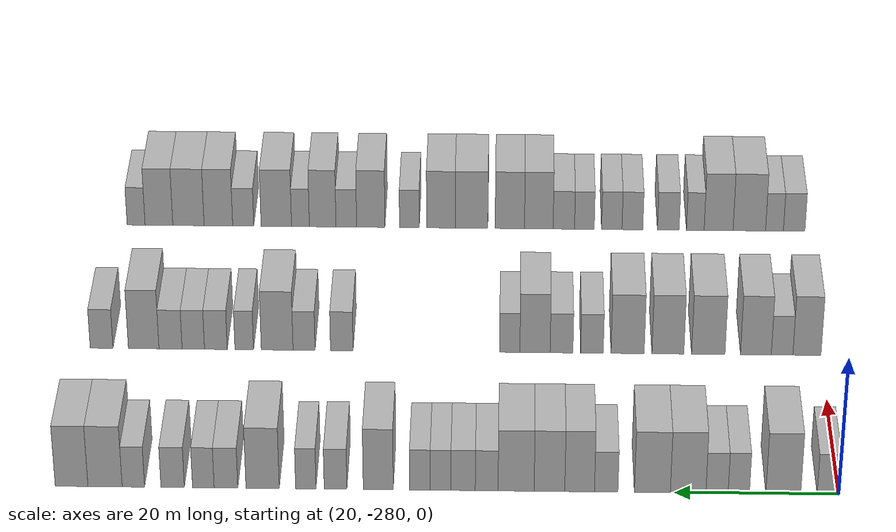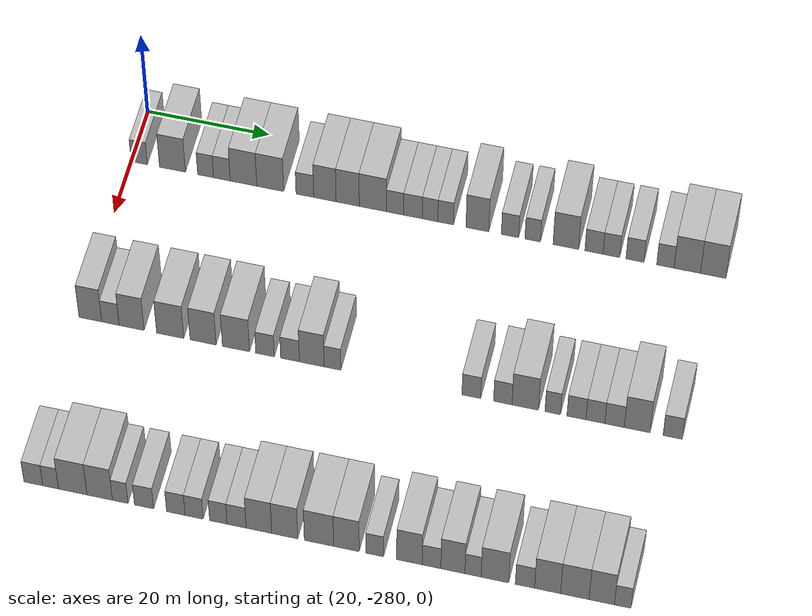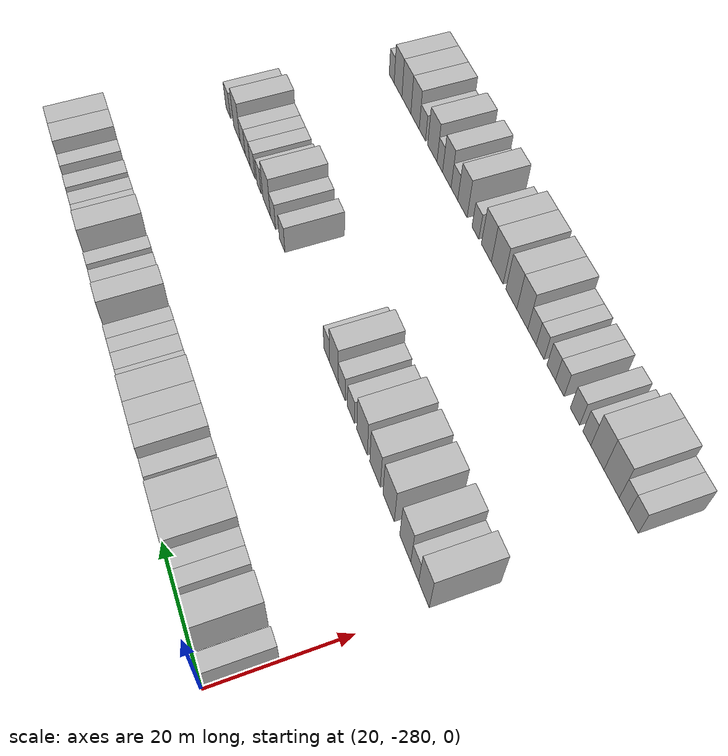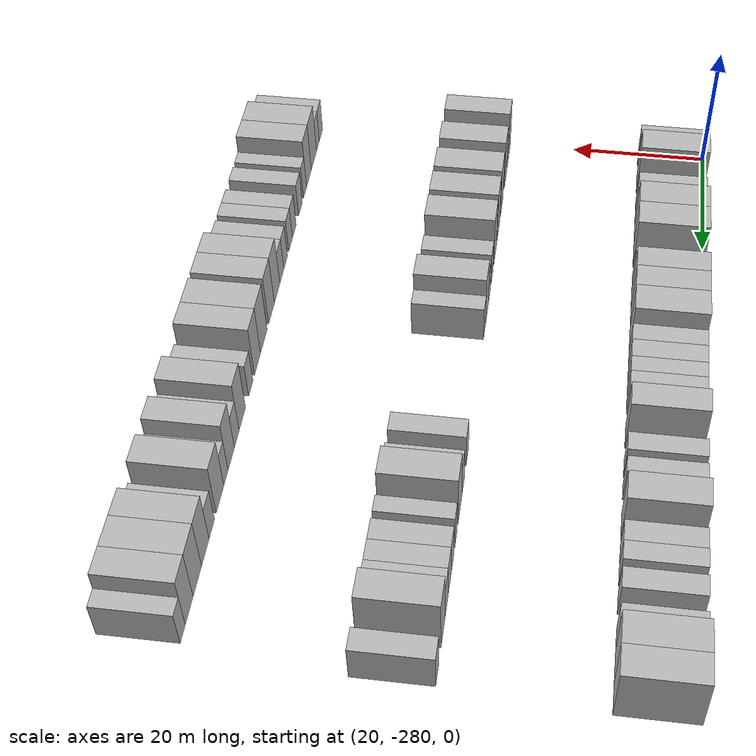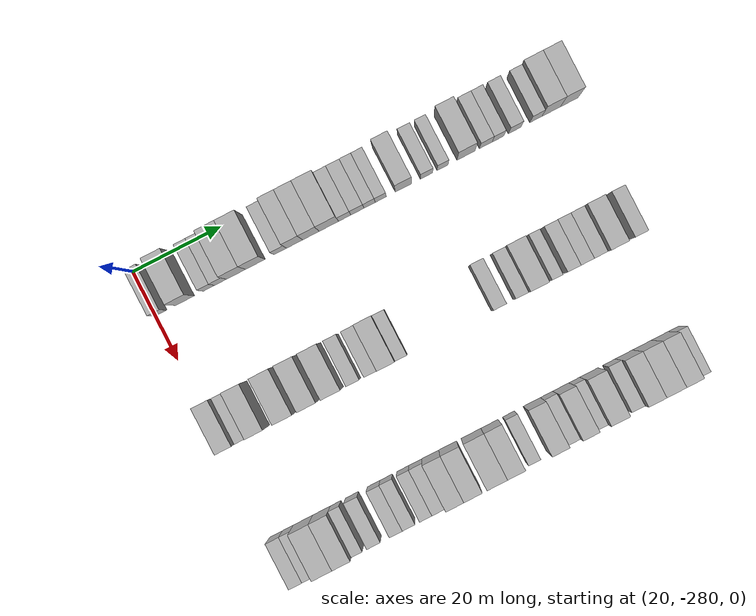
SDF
<sdf version="1.6">
 <world name="default">
  <model name="building_1">
   <static>1</static>
   <pose>25.0000 -278.6816 0 0.000000 0.000000 0.000000</pose>
   <link name="link">
    <pose>0 0 3.00 0 0 0</pose>
    <collision name="collision"><geometry><box><size>10.0000 2.6369 6.0000</size></box></geometry></collision>
    <visual name="visual">
     <cast_shadows>0</cast_shadows>
     <geometry><box><size>10.0000 2.6369 6.0000</size></box></geometry>
     <material>
      <script>
       <uri>model://HANNAS_wall/materials/scripts</uri>
       <uri>model://HANNAS_wall/materials/textures</uri>
       <name>vrc/HANNAS_wall</name>
      </script>
     </material>
    </visual>
   </link>
  </model>
  <model name="building_2">
   <static>1</static>
   <pose>25.0000 -273.2493 0 0.000000 0.000000 0.000000</pose>
   <link name="link">
    <pose>0 0 4.50 0 0 0</pose>
    <collision name="collision"><geometry><box><size>10.0000 4.2277 9.0000</size></box></geometry></collision>
    <visual name="visual">
     <cast_shadows>0</cast_shadows>
     <geometry><box><size>10.0000 4.2277 9.0000</size></box></geometry>
     <material>
      <script>
       <uri>model://HANNAS_wall/materials/scripts</uri>
       <uri>model://HANNAS_wall/materials/textures</uri>
       <name>vrc/HANNAS_wall</name>
      </script>
     </material>
    </visual>
   </link>
  </model>
  <model name="building_3">
   <static>1</static>
   <pose>25.0000 -267.8401 0 0.000000 0.000000 0.000000</pose>
   <link name="link">
    <pose>0 0 3.00 0 0 0</pose>
    <collision name="collision"><geometry><box><size>10.0000 2.5906 6.0000</size></box></geometry></collision>
    <visual name="visual">
     <cast_shadows>0</cast_shadows>
     <geometry><box><size>10.0000 2.5906 6.0000</size></box></geometry>
     <material>
      <script>
       <uri>model://HANNAS_wall/materials/scripts</uri>
       <uri>model://HANNAS_wall/materials/textures</uri>
       <name>vrc/HANNAS_wall</name>
      </script>
     </material>
    </visual>
   </link>
  </model>
  <model name="building_4">
   <static>1</static>
   <pose>25.0000 -265.1921 0 0.000000 0.000000 0.000000</pose>
   <link name="link">
    <pose>0 0 3.00 0 0 0</pose>
    <collision name="collision"><geometry><box><size>10.0000 2.7054 6.0000</size></box></geometry></collision>
    <visual name="visual">
     <cast_shadows>0</cast_shadows>
     <geometry><box><size>10.0000 2.7054 6.0000</size></box></geometry>
     <material>
      <script>
       <uri>model://HANNAS_wall/materials/scripts</uri>
       <uri>model://HANNAS_wall/materials/textures</uri>
       <name>vrc/HANNAS_wall</name>
      </script>
     </material>
    </visual>
   </link>
  </model>
  <model name="building_5">
   <static>1</static>
   <pose>25.0000 -261.6793 0 0.000000 0.000000 0.000000</pose>
   <link name="link">
    <pose>0 0 4.50 0 0 0</pose>
    <collision name="collision"><geometry><box><size>10.0000 4.3202 9.0000</size></box></geometry></collision>
    <visual name="visual">
     <cast_shadows>0</cast_shadows>
     <geometry><box><size>10.0000 4.3202 9.0000</size></box></geometry>
     <material>
      <script>
       <uri>model://HANNAS_wall/materials/scripts</uri>
       <uri>model://HANNAS_wall/materials/textures</uri>
       <name>vrc/HANNAS_wall</name>
      </script>
     </material>
    </visual>
   </link>
  </model>
  <model name="building_6">
   <static>1</static>
   <pose>25.0000 -257.3326 0 0.000000 0.000000 0.000000</pose>
   <link name="link">
    <pose>0 0 4.50 0 0 0</pose>
    <collision name="collision"><geometry><box><size>10.0000 4.3732 9.0000</size></box></geometry></collision>
    <visual name="visual">
     <cast_shadows>0</cast_shadows>
     <geometry><box><size>10.0000 4.3732 9.0000</size></box></geometry>
     <material>
      <script>
       <uri>model://HANNAS_wall/materials/scripts</uri>
       <uri>model://HANNAS_wall/materials/textures</uri>
       <name>vrc/HANNAS_wall</name>
      </script>
     </material>
    </visual>
   </link>
  </model>
  <model name="building_7">
   <static>1</static>
   <pose>25.0000 -251.7151 0 0.000000 0.000000 0.000000</pose>
   <link name="link">
    <pose>0 0 3.00 0 0 0</pose>
    <collision name="collision"><geometry><box><size>10.0000 2.8618 6.0000</size></box></geometry></collision>
    <visual name="visual">
     <cast_shadows>0</cast_shadows>
     <geometry><box><size>10.0000 2.8618 6.0000</size></box></geometry>
     <material>
      <script>
       <uri>model://HANNAS_wall/materials/scripts</uri>
       <uri>model://HANNAS_wall/materials/textures</uri>
       <name>vrc/HANNAS_wall</name>
      </script>
     </material>
    </visual>
   </link>
  </model>
  <model name="building_8">
   <static>1</static>
   <pose>25.0000 -248.4774 0 0.000000 0.000000 0.000000</pose>
   <link name="link">
    <pose>0 0 4.50 0 0 0</pose>
    <collision name="collision"><geometry><box><size>10.0000 3.6135 9.0000</size></box></geometry></collision>
    <visual name="visual">
     <cast_shadows>0</cast_shadows>
     <geometry><box><size>10.0000 3.6135 9.0000</size></box></geometry>
     <material>
      <script>
       <uri>model://HANNAS_wall/materials/scripts</uri>
       <uri>model://HANNAS_wall/materials/textures</uri>
       <name>vrc/HANNAS_wall</name>
      </script>
     </material>
    </visual>
   </link>
  </model>
  <model name="building_9">
   <static>1</static>
   <pose>25.0000 -244.8065 0 0.000000 0.000000 0.000000</pose>
   <link name="link">
    <pose>0 0 4.50 0 0 0</pose>
    <collision name="collision"><geometry><box><size>10.0000 3.7282 9.0000</size></box></geometry></collision>
    <visual name="visual">
     <cast_shadows>0</cast_shadows>
     <geometry><box><size>10.0000 3.7282 9.0000</size></box></geometry>
     <material>
      <script>
       <uri>model://HANNAS_wall/materials/scripts</uri>
       <uri>model://HANNAS_wall/materials/textures</uri>
       <name>vrc/HANNAS_wall</name>
      </script>
     </material>
    </visual>
   </link>
  </model>
  <model name="building_10">
   <static>1</static>
   <pose>25.0000 -240.7461 0 0.000000 0.000000 0.000000</pose>
   <link name="link">
    <pose>0 0 4.50 0 0 0</pose>
    <collision name="collision"><geometry><box><size>10.0000 4.3927 9.0000</size></box></geometry></collision>
    <visual name="visual">
     <cast_shadows>0</cast_shadows>
     <geometry><box><size>10.0000 4.3927 9.0000</size></box></geometry>
     <material>
      <script>
       <uri>model://HANNAS_wall/materials/scripts</uri>
       <uri>model://HANNAS_wall/materials/textures</uri>
       <name>vrc/HANNAS_wall</name>
      </script>
     </material>
    </visual>
   </link>
  </model>
  <model name="building_11">
   <static>1</static>
   <pose>25.0000 -237.1634 0 0.000000 0.000000 0.000000</pose>
   <link name="link">
    <pose>0 0 3.00 0 0 0</pose>
    <collision name="collision"><geometry><box><size>10.0000 2.7726 6.0000</size></box></geometry></collision>
    <visual name="visual">
     <cast_shadows>0</cast_shadows>
     <geometry><box><size>10.0000 2.7726 6.0000</size></box></geometry>
     <material>
      <script>
       <uri>model://HANNAS_wall/materials/scripts</uri>
       <uri>model://HANNAS_wall/materials/textures</uri>
       <name>vrc/HANNAS_wall</name>
      </script>
     </material>
    </visual>
   </link>
  </model>
  <model name="building_12">
   <static>1</static>
   <pose>25.0000 -234.2931 0 0.000000 0.000000 0.000000</pose>
   <link name="link">
    <pose>0 0 3.00 0 0 0</pose>
    <collision name="collision"><geometry><box><size>10.0000 2.9680 6.0000</size></box></geometry></collision>
    <visual name="visual">
     <cast_shadows>0</cast_shadows>
     <geometry><box><size>10.0000 2.9680 6.0000</size></box></geometry>
     <material>
      <script>
       <uri>model://HANNAS_wall/materials/scripts</uri>
       <uri>model://HANNAS_wall/materials/textures</uri>
       <name>vrc/HANNAS_wall</name>
      </script>
     </material>
    </visual>
   </link>
  </model>
  <model name="building_13">
   <static>1</static>
   <pose>25.0000 -231.5516 0 0.000000 0.000000 0.000000</pose>
   <link name="link">
    <pose>0 0 3.00 0 0 0</pose>
    <collision name="collision"><geometry><box><size>10.0000 2.5151 6.0000</size></box></geometry></collision>
    <visual name="visual">
     <cast_shadows>0</cast_shadows>
     <geometry><box><size>10.0000 2.5151 6.0000</size></box></geometry>
     <material>
      <script>
       <uri>model://HANNAS_wall/materials/scripts</uri>
       <uri>model://HANNAS_wall/materials/textures</uri>
       <name>vrc/HANNAS_wall</name>
      </script>
     </material>
    </visual>
   </link>
  </model>
  <model name="building_14">
   <static>1</static>
   <pose>25.0000 -229.0391 0 0.000000 0.000000 0.000000</pose>
   <link name="link">
    <pose>0 0 3.00 0 0 0</pose>
    <collision name="collision"><geometry><box><size>10.0000 2.5098 6.0000</size></box></geometry></collision>
    <visual name="visual">
     <cast_shadows>0</cast_shadows>
     <geometry><box><size>10.0000 2.5098 6.0000</size></box></geometry>
     <material>
      <script>
       <uri>model://HANNAS_wall/materials/scripts</uri>
       <uri>model://HANNAS_wall/materials/textures</uri>
       <name>vrc/HANNAS_wall</name>
      </script>
     </material>
    </visual>
   </link>
  </model>
  <model name="building_15">
   <static>1</static>
   <pose>25.0000 -223.9555 0 0.000000 0.000000 0.000000</pose>
   <link name="link">
    <pose>0 0 4.50 0 0 0</pose>
    <collision name="collision"><geometry><box><size>10.0000 3.6572 9.0000</size></box></geometry></collision>
    <visual name="visual">
     <cast_shadows>0</cast_shadows>
     <geometry><box><size>10.0000 3.6572 9.0000</size></box></geometry>
     <material>
      <script>
       <uri>model://HANNAS_wall/materials/scripts</uri>
       <uri>model://HANNAS_wall/materials/textures</uri>
       <name>vrc/HANNAS_wall</name>
      </script>
     </material>
    </visual>
   </link>
  </model>
  <model name="building_16">
   <static>1</static>
   <pose>25.0000 -218.7445 0 0.000000 0.000000 0.000000</pose>
   <link name="link">
    <pose>0 0 3.00 0 0 0</pose>
    <collision name="collision"><geometry><box><size>10.0000 2.7648 6.0000</size></box></geometry></collision>
    <visual name="visual">
     <cast_shadows>0</cast_shadows>
     <geometry><box><size>10.0000 2.7648 6.0000</size></box></geometry>
     <material>
      <script>
       <uri>model://HANNAS_wall/materials/scripts</uri>
       <uri>model://HANNAS_wall/materials/textures</uri>
       <name>vrc/HANNAS_wall</name>
      </script>
     </material>
    </visual>
   </link>
  </model>
  <model name="building_17">
   <static>1</static>
   <pose>25.0000 -215.1217 0 0.000000 0.000000 0.000000</pose>
   <link name="link">
    <pose>0 0 3.00 0 0 0</pose>
    <collision name="collision"><geometry><box><size>10.0000 2.4809 6.0000</size></box></geometry></collision>
    <visual name="visual">
     <cast_shadows>0</cast_shadows>
     <geometry><box><size>10.0000 2.4809 6.0000</size></box></geometry>
     <material>
      <script>
       <uri>model://HANNAS_wall/materials/scripts</uri>
       <uri>model://HANNAS_wall/materials/textures</uri>
       <name>vrc/HANNAS_wall</name>
      </script>
     </material>
    </visual>
   </link>
  </model>
  <model name="building_18">
   <static>1</static>
   <pose>25.0000 -209.8505 0 0.000000 0.000000 0.000000</pose>
   <link name="link">
    <pose>0 0 4.50 0 0 0</pose>
    <collision name="collision"><geometry><box><size>10.0000 4.0614 9.0000</size></box></geometry></collision>
    <visual name="visual">
     <cast_shadows>0</cast_shadows>
     <geometry><box><size>10.0000 4.0614 9.0000</size></box></geometry>
     <material>
      <script>
       <uri>model://HANNAS_wall/materials/scripts</uri>
       <uri>model://HANNAS_wall/materials/textures</uri>
       <name>vrc/HANNAS_wall</name>
      </script>
     </material>
    </visual>
   </link>
  </model>
  <model name="building_19">
   <static>1</static>
   <pose>25.0000 -205.3740 0 0.000000 0.000000 0.000000</pose>
   <link name="link">
    <pose>0 0 3.00 0 0 0</pose>
    <collision name="collision"><geometry><box><size>10.0000 2.8917 6.0000</size></box></geometry></collision>
    <visual name="visual">
     <cast_shadows>0</cast_shadows>
     <geometry><box><size>10.0000 2.8917 6.0000</size></box></geometry>
     <material>
      <script>
       <uri>model://HANNAS_wall/materials/scripts</uri>
       <uri>model://HANNAS_wall/materials/textures</uri>
       <name>vrc/HANNAS_wall</name>
      </script>
     </material>
    </visual>
   </link>
  </model>
  <model name="building_20">
   <static>1</static>
   <pose>25.0000 -202.6111 0 0.000000 0.000000 0.000000</pose>
   <link name="link">
    <pose>0 0 3.00 0 0 0</pose>
    <collision name="collision"><geometry><box><size>10.0000 2.6340 6.0000</size></box></geometry></collision>
    <visual name="visual">
     <cast_shadows>0</cast_shadows>
     <geometry><box><size>10.0000 2.6340 6.0000</size></box></geometry>
     <material>
      <script>
       <uri>model://HANNAS_wall/materials/scripts</uri>
       <uri>model://HANNAS_wall/materials/textures</uri>
       <name>vrc/HANNAS_wall</name>
      </script>
     </material>
    </visual>
   </link>
  </model>
  <model name="building_21">
   <static>1</static>
   <pose>25.0000 -198.8662 0 0.000000 0.000000 0.000000</pose>
   <link name="link">
    <pose>0 0 3.00 0 0 0</pose>
    <collision name="collision"><geometry><box><size>10.0000 2.8558 6.0000</size></box></geometry></collision>
    <visual name="visual">
     <cast_shadows>0</cast_shadows>
     <geometry><box><size>10.0000 2.8558 6.0000</size></box></geometry>
     <material>
      <script>
       <uri>model://HANNAS_wall/materials/scripts</uri>
       <uri>model://HANNAS_wall/materials/textures</uri>
       <name>vrc/HANNAS_wall</name>
      </script>
     </material>
    </visual>
   </link>
  </model>
  <model name="building_22">
   <static>1</static>
   <pose>25.0000 -194.0693 0 0.000000 0.000000 0.000000</pose>
   <link name="link">
    <pose>0 0 3.00 0 0 0</pose>
    <collision name="collision"><geometry><box><size>10.0000 2.7381 6.0000</size></box></geometry></collision>
    <visual name="visual">
     <cast_shadows>0</cast_shadows>
     <geometry><box><size>10.0000 2.7381 6.0000</size></box></geometry>
     <material>
      <script>
       <uri>model://HANNAS_wall/materials/scripts</uri>
       <uri>model://HANNAS_wall/materials/textures</uri>
       <name>vrc/HANNAS_wall</name>
      </script>
     </material>
    </visual>
   </link>
  </model>
  <model name="building_23">
   <static>1</static>
   <pose>25.0000 -190.6096 0 0.000000 0.000000 0.000000</pose>
   <link name="link">
    <pose>0 0 4.50 0 0 0</pose>
    <collision name="collision"><geometry><box><size>10.0000 4.1812 9.0000</size></box></geometry></collision>
    <visual name="visual">
     <cast_shadows>0</cast_shadows>
     <geometry><box><size>10.0000 4.1812 9.0000</size></box></geometry>
     <material>
      <script>
       <uri>model://HANNAS_wall/materials/scripts</uri>
       <uri>model://HANNAS_wall/materials/textures</uri>
       <name>vrc/HANNAS_wall</name>
      </script>
     </material>
    </visual>
   </link>
  </model>
  <model name="building_24">
   <static>1</static>
   <pose>25.0000 -186.5205 0 0.000000 0.000000 0.000000</pose>
   <link name="link">
    <pose>0 0 4.50 0 0 0</pose>
    <collision name="collision"><geometry><box><size>10.0000 3.9969 9.0000</size></box></geometry></collision>
    <visual name="visual">
     <cast_shadows>0</cast_shadows>
     <geometry><box><size>10.0000 3.9969 9.0000</size></box></geometry>
     <material>
      <script>
       <uri>model://HANNAS_wall/materials/scripts</uri>
       <uri>model://HANNAS_wall/materials/textures</uri>
       <name>vrc/HANNAS_wall</name>
      </script>
     </material>
    </visual>
   </link>
  </model>
  <model name="building_138">
   <static>1</static>
   <pose>55.0000 -278.1940 0 0.000000 0.000000 0.000000</pose>
   <link name="link">
    <pose>0 0 4.50 0 0 0</pose>
    <collision name="collision"><geometry><box><size>10.0000 3.6120 9.0000</size></box></geometry></collision>
    <visual name="visual">
     <cast_shadows>0</cast_shadows>
     <geometry><box><size>10.0000 3.6120 9.0000</size></box></geometry>
     <material>
      <script>
       <uri>model://HANNAS_wall/materials/scripts</uri>
       <uri>model://HANNAS_wall/materials/textures</uri>
       <name>vrc/HANNAS_wall</name>
      </script>
     </material>
    </visual>
   </link>
  </model>
  <model name="building_139">
   <static>1</static>
   <pose>55.0000 -274.9974 0 0.000000 0.000000 0.000000</pose>
   <link name="link">
    <pose>0 0 3.00 0 0 0</pose>
    <collision name="collision"><geometry><box><size>10.0000 2.7810 6.0000</size></box></geometry></collision>
    <visual name="visual">
     <cast_shadows>0</cast_shadows>
     <geometry><box><size>10.0000 2.7810 6.0000</size></box></geometry>
     <material>
      <script>
       <uri>model://HANNAS_wall/materials/scripts</uri>
       <uri>model://HANNAS_wall/materials/textures</uri>
       <name>vrc/HANNAS_wall</name>
      </script>
     </material>
    </visual>
   </link>
  </model>
  <model name="building_140">
   <static>1</static>
   <pose>55.0000 -271.6221 0 0.000000 0.000000 0.000000</pose>
   <link name="link">
    <pose>0 0 4.50 0 0 0</pose>
    <collision name="collision"><geometry><box><size>10.0000 3.9696 9.0000</size></box></geometry></collision>
    <visual name="visual">
     <cast_shadows>0</cast_shadows>
     <geometry><box><size>10.0000 3.9696 9.0000</size></box></geometry>
     <material>
      <script>
       <uri>model://HANNAS_wall/materials/scripts</uri>
       <uri>model://HANNAS_wall/materials/textures</uri>
       <name>vrc/HANNAS_wall</name>
      </script>
     </material>
    </visual>
   </link>
  </model>
  <model name="building_141">
   <static>1</static>
   <pose>55.0000 -265.4866 0 0.000000 0.000000 0.000000</pose>
   <link name="link">
    <pose>0 0 4.50 0 0 0</pose>
    <collision name="collision"><geometry><box><size>10.0000 4.3013 9.0000</size></box></geometry></collision>
    <visual name="visual">
     <cast_shadows>0</cast_shadows>
     <geometry><box><size>10.0000 4.3013 9.0000</size></box></geometry>
     <material>
      <script>
       <uri>model://HANNAS_wall/materials/scripts</uri>
       <uri>model://HANNAS_wall/materials/textures</uri>
       <name>vrc/HANNAS_wall</name>
      </script>
     </material>
    </visual>
   </link>
  </model>
  <model name="building_142">
   <static>1</static>
   <pose>55.0000 -260.2772 0 0.000000 0.000000 0.000000</pose>
   <link name="link">
    <pose>0 0 4.50 0 0 0</pose>
    <collision name="collision"><geometry><box><size>10.0000 4.1176 9.0000</size></box></geometry></collision>
    <visual name="visual">
     <cast_shadows>0</cast_shadows>
     <geometry><box><size>10.0000 4.1176 9.0000</size></box></geometry>
     <material>
      <script>
       <uri>model://HANNAS_wall/materials/scripts</uri>
       <uri>model://HANNAS_wall/materials/textures</uri>
       <name>vrc/HANNAS_wall</name>
      </script>
     </material>
    </visual>
   </link>
  </model>
  <model name="building_143">
   <static>1</static>
   <pose>55.0000 -255.0789 0 0.000000 0.000000 0.000000</pose>
   <link name="link">
    <pose>0 0 4.50 0 0 0</pose>
    <collision name="collision"><geometry><box><size>10.0000 4.2792 9.0000</size></box></geometry></collision>
    <visual name="visual">
     <cast_shadows>0</cast_shadows>
     <geometry><box><size>10.0000 4.2792 9.0000</size></box></geometry>
     <material>
      <script>
       <uri>model://HANNAS_wall/materials/scripts</uri>
       <uri>model://HANNAS_wall/materials/textures</uri>
       <name>vrc/HANNAS_wall</name>
      </script>
     </material>
    </visual>
   </link>
  </model>
  <model name="building_144">
   <static>1</static>
   <pose>55.0000 -250.4815 0 0.000000 0.000000 0.000000</pose>
   <link name="link">
    <pose>0 0 3.00 0 0 0</pose>
    <collision name="collision"><geometry><box><size>10.0000 2.9156 6.0000</size></box></geometry></collision>
    <visual name="visual">
     <cast_shadows>0</cast_shadows>
     <geometry><box><size>10.0000 2.9156 6.0000</size></box></geometry>
     <material>
      <script>
       <uri>model://HANNAS_wall/materials/scripts</uri>
       <uri>model://HANNAS_wall/materials/textures</uri>
       <name>vrc/HANNAS_wall</name>
      </script>
     </material>
    </visual>
   </link>
  </model>
  <model name="building_145">
   <static>1</static>
   <pose>55.0000 -246.5535 0 0.000000 0.000000 0.000000</pose>
   <link name="link">
    <pose>0 0 3.00 0 0 0</pose>
    <collision name="collision"><geometry><box><size>10.0000 2.9403 6.0000</size></box></geometry></collision>
    <visual name="visual">
     <cast_shadows>0</cast_shadows>
     <geometry><box><size>10.0000 2.9403 6.0000</size></box></geometry>
     <material>
      <script>
       <uri>model://HANNAS_wall/materials/scripts</uri>
       <uri>model://HANNAS_wall/materials/textures</uri>
       <name>vrc/HANNAS_wall</name>
      </script>
     </material>
    </visual>
   </link>
  </model>
  <model name="building_146">
   <static>1</static>
   <pose>55.0000 -243.1317 0 0.000000 0.000000 0.000000</pose>
   <link name="link">
    <pose>0 0 4.50 0 0 0</pose>
    <collision name="collision"><geometry><box><size>10.0000 3.9034 9.0000</size></box></geometry></collision>
    <visual name="visual">
     <cast_shadows>0</cast_shadows>
     <geometry><box><size>10.0000 3.9034 9.0000</size></box></geometry>
     <material>
      <script>
       <uri>model://HANNAS_wall/materials/scripts</uri>
       <uri>model://HANNAS_wall/materials/textures</uri>
       <name>vrc/HANNAS_wall</name>
      </script>
     </material>
    </visual>
   </link>
  </model>
  <model name="building_147">
   <static>1</static>
   <pose>55.0000 -239.8656 0 0.000000 0.000000 0.000000</pose>
   <link name="link">
    <pose>0 0 3.00 0 0 0</pose>
    <collision name="collision"><geometry><box><size>10.0000 2.6287 6.0000</size></box></geometry></collision>
    <visual name="visual">
     <cast_shadows>0</cast_shadows>
     <geometry><box><size>10.0000 2.6287 6.0000</size></box></geometry>
     <material>
      <script>
       <uri>model://HANNAS_wall/materials/scripts</uri>
       <uri>model://HANNAS_wall/materials/textures</uri>
       <name>vrc/HANNAS_wall</name>
      </script>
     </material>
    </visual>
   </link>
  </model>
  <model name="building_148">
   <static>1</static>
   <pose>55.0000 -218.1747 0 0.000000 0.000000 0.000000</pose>
   <link name="link">
    <pose>0 0 3.00 0 0 0</pose>
    <collision name="collision"><geometry><box><size>10.0000 2.9177 6.0000</size></box></geometry></collision>
    <visual name="visual">
     <cast_shadows>0</cast_shadows>
     <geometry><box><size>10.0000 2.9177 6.0000</size></box></geometry>
     <material>
      <script>
       <uri>model://HANNAS_wall/materials/scripts</uri>
       <uri>model://HANNAS_wall/materials/textures</uri>
       <name>vrc/HANNAS_wall</name>
      </script>
     </material>
    </visual>
   </link>
  </model>
  <model name="building_149">
   <static>1</static>
   <pose>55.0000 -213.2936 0 0.000000 0.000000 0.000000</pose>
   <link name="link">
    <pose>0 0 3.00 0 0 0</pose>
    <collision name="collision"><geometry><box><size>10.0000 2.8445 6.0000</size></box></geometry></collision>
    <visual name="visual">
     <cast_shadows>0</cast_shadows>
     <geometry><box><size>10.0000 2.8445 6.0000</size></box></geometry>
     <material>
      <script>
       <uri>model://HANNAS_wall/materials/scripts</uri>
       <uri>model://HANNAS_wall/materials/textures</uri>
       <name>vrc/HANNAS_wall</name>
      </script>
     </material>
    </visual>
   </link>
  </model>
  <model name="building_150">
   <static>1</static>
   <pose>55.0000 -209.8162 0 0.000000 0.000000 0.000000</pose>
   <link name="link">
    <pose>0 0 4.50 0 0 0</pose>
    <collision name="collision"><geometry><box><size>10.0000 4.1103 9.0000</size></box></geometry></collision>
    <visual name="visual">
     <cast_shadows>0</cast_shadows>
     <geometry><box><size>10.0000 4.1103 9.0000</size></box></geometry>
     <material>
      <script>
       <uri>model://HANNAS_wall/materials/scripts</uri>
       <uri>model://HANNAS_wall/materials/textures</uri>
       <name>vrc/HANNAS_wall</name>
      </script>
     </material>
    </visual>
   </link>
  </model>
  <model name="building_151">
   <static>1</static>
   <pose>55.0000 -205.5580 0 0.000000 0.000000 0.000000</pose>
   <link name="link">
    <pose>0 0 3.00 0 0 0</pose>
    <collision name="collision"><geometry><box><size>10.0000 2.4060 6.0000</size></box></geometry></collision>
    <visual name="visual">
     <cast_shadows>0</cast_shadows>
     <geometry><box><size>10.0000 2.4060 6.0000</size></box></geometry>
     <material>
      <script>
       <uri>model://HANNAS_wall/materials/scripts</uri>
       <uri>model://HANNAS_wall/materials/textures</uri>
       <name>vrc/HANNAS_wall</name>
      </script>
     </material>
    </visual>
   </link>
  </model>
  <model name="building_152">
   <static>1</static>
   <pose>55.0000 -201.8822 0 0.000000 0.000000 0.000000</pose>
   <link name="link">
    <pose>0 0 3.00 0 0 0</pose>
    <collision name="collision"><geometry><box><size>10.0000 2.9455 6.0000</size></box></geometry></collision>
    <visual name="visual">
     <cast_shadows>0</cast_shadows>
     <geometry><box><size>10.0000 2.9455 6.0000</size></box></geometry>
     <material>
      <script>
       <uri>model://HANNAS_wall/materials/scripts</uri>
       <uri>model://HANNAS_wall/materials/textures</uri>
       <name>vrc/HANNAS_wall</name>
      </script>
     </material>
    </visual>
   </link>
  </model>
  <model name="building_153">
   <static>1</static>
   <pose>55.0000 -198.9611 0 0.000000 0.000000 0.000000</pose>
   <link name="link">
    <pose>0 0 3.00 0 0 0</pose>
    <collision name="collision"><geometry><box><size>10.0000 2.8969 6.0000</size></box></geometry></collision>
    <visual name="visual">
     <cast_shadows>0</cast_shadows>
     <geometry><box><size>10.0000 2.8969 6.0000</size></box></geometry>
     <material>
      <script>
       <uri>model://HANNAS_wall/materials/scripts</uri>
       <uri>model://HANNAS_wall/materials/textures</uri>
       <name>vrc/HANNAS_wall</name>
      </script>
     </material>
    </visual>
   </link>
  </model>
  <model name="building_154">
   <static>1</static>
   <pose>55.0000 -196.0142 0 0.000000 0.000000 0.000000</pose>
   <link name="link">
    <pose>0 0 3.00 0 0 0</pose>
    <collision name="collision"><geometry><box><size>10.0000 2.9969 6.0000</size></box></geometry></collision>
    <visual name="visual">
     <cast_shadows>0</cast_shadows>
     <geometry><box><size>10.0000 2.9969 6.0000</size></box></geometry>
     <material>
      <script>
       <uri>model://HANNAS_wall/materials/scripts</uri>
       <uri>model://HANNAS_wall/materials/textures</uri>
       <name>vrc/HANNAS_wall</name>
      </script>
     </material>
    </visual>
   </link>
  </model>
  <model name="building_155">
   <static>1</static>
   <pose>55.0000 -192.5365 0 0.000000 0.000000 0.000000</pose>
   <link name="link">
    <pose>0 0 4.50 0 0 0</pose>
    <collision name="collision"><geometry><box><size>10.0000 3.9584 9.0000</size></box></geometry></collision>
    <visual name="visual">
     <cast_shadows>0</cast_shadows>
     <geometry><box><size>10.0000 3.9584 9.0000</size></box></geometry>
     <material>
      <script>
       <uri>model://HANNAS_wall/materials/scripts</uri>
       <uri>model://HANNAS_wall/materials/textures</uri>
       <name>vrc/HANNAS_wall</name>
      </script>
     </material>
    </visual>
   </link>
  </model>
  <model name="building_156">
   <static>1</static>
   <pose>55.0000 -187.0860 0 0.000000 0.000000 0.000000</pose>
   <link name="link">
    <pose>0 0 3.00 0 0 0</pose>
    <collision name="collision"><geometry><box><size>10.0000 2.9426 6.0000</size></box></geometry></collision>
    <visual name="visual">
     <cast_shadows>0</cast_shadows>
     <geometry><box><size>10.0000 2.9426 6.0000</size></box></geometry>
     <material>
      <script>
       <uri>model://HANNAS_wall/materials/scripts</uri>
       <uri>model://HANNAS_wall/materials/textures</uri>
       <name>vrc/HANNAS_wall</name>
      </script>
     </material>
    </visual>
   </link>
  </model>
  <model name="building_267">
   <static>1</static>
   <pose>85.0000 -278.5379 0 0.000000 0.000000 0.000000</pose>
   <link name="link">
    <pose>0 0 3.00 0 0 0</pose>
    <collision name="collision"><geometry><box><size>10.0000 2.9241 6.0000</size></box></geometry></collision>
    <visual name="visual">
     <cast_shadows>0</cast_shadows>
     <geometry><box><size>10.0000 2.9241 6.0000</size></box></geometry>
     <material>
      <script>
       <uri>model://HANNAS_wall/materials/scripts</uri>
       <uri>model://HANNAS_wall/materials/textures</uri>
       <name>vrc/HANNAS_wall</name>
      </script>
     </material>
    </visual>
   </link>
  </model>
  <model name="building_268">
   <static>1</static>
   <pose>85.0000 -275.8620 0 0.000000 0.000000 0.000000</pose>
   <link name="link">
    <pose>0 0 3.00 0 0 0</pose>
    <collision name="collision"><geometry><box><size>10.0000 2.4278 6.0000</size></box></geometry></collision>
    <visual name="visual">
     <cast_shadows>0</cast_shadows>
     <geometry><box><size>10.0000 2.4278 6.0000</size></box></geometry>
     <material>
      <script>
       <uri>model://HANNAS_wall/materials/scripts</uri>
       <uri>model://HANNAS_wall/materials/textures</uri>
       <name>vrc/HANNAS_wall</name>
      </script>
     </material>
    </visual>
   </link>
  </model>
  <model name="building_269">
   <static>1</static>
   <pose>85.0000 -272.4338 0 0.000000 0.000000 0.000000</pose>
   <link name="link">
    <pose>0 0 4.50 0 0 0</pose>
    <collision name="collision"><geometry><box><size>10.0000 4.4285 9.0000</size></box></geometry></collision>
    <visual name="visual">
     <cast_shadows>0</cast_shadows>
     <geometry><box><size>10.0000 4.4285 9.0000</size></box></geometry>
     <material>
      <script>
       <uri>model://HANNAS_wall/materials/scripts</uri>
       <uri>model://HANNAS_wall/materials/textures</uri>
       <name>vrc/HANNAS_wall</name>
      </script>
     </material>
    </visual>
   </link>
  </model>
  <model name="building_270">
   <static>1</static>
   <pose>85.0000 -268.2489 0 0.000000 0.000000 0.000000</pose>
   <link name="link">
    <pose>0 0 4.50 0 0 0</pose>
    <collision name="collision"><geometry><box><size>10.0000 3.9415 9.0000</size></box></geometry></collision>
    <visual name="visual">
     <cast_shadows>0</cast_shadows>
     <geometry><box><size>10.0000 3.9415 9.0000</size></box></geometry>
     <material>
      <script>
       <uri>model://HANNAS_wall/materials/scripts</uri>
       <uri>model://HANNAS_wall/materials/textures</uri>
       <name>vrc/HANNAS_wall</name>
      </script>
     </material>
    </visual>
   </link>
  </model>
  <model name="building_271">
   <static>1</static>
   <pose>85.0000 -265.0725 0 0.000000 0.000000 0.000000</pose>
   <link name="link">
    <pose>0 0 3.00 0 0 0</pose>
    <collision name="collision"><geometry><box><size>10.0000 2.4112 6.0000</size></box></geometry></collision>
    <visual name="visual">
     <cast_shadows>0</cast_shadows>
     <geometry><box><size>10.0000 2.4112 6.0000</size></box></geometry>
     <material>
      <script>
       <uri>model://HANNAS_wall/materials/scripts</uri>
       <uri>model://HANNAS_wall/materials/textures</uri>
       <name>vrc/HANNAS_wall</name>
      </script>
     </material>
    </visual>
   </link>
  </model>
  <model name="building_272">
   <static>1</static>
   <pose>85.0000 -261.3915 0 0.000000 0.000000 0.000000</pose>
   <link name="link">
    <pose>0 0 3.00 0 0 0</pose>
    <collision name="collision"><geometry><box><size>10.0000 2.9510 6.0000</size></box></geometry></collision>
    <visual name="visual">
     <cast_shadows>0</cast_shadows>
     <geometry><box><size>10.0000 2.9510 6.0000</size></box></geometry>
     <material>
      <script>
       <uri>model://HANNAS_wall/materials/scripts</uri>
       <uri>model://HANNAS_wall/materials/textures</uri>
       <name>vrc/HANNAS_wall</name>
      </script>
     </material>
    </visual>
   </link>
  </model>
  <model name="building_273">
   <static>1</static>
   <pose>85.0000 -256.4971 0 0.000000 0.000000 0.000000</pose>
   <link name="link">
    <pose>0 0 3.00 0 0 0</pose>
    <collision name="collision"><geometry><box><size>10.0000 2.8377 6.0000</size></box></geometry></collision>
    <visual name="visual">
     <cast_shadows>0</cast_shadows>
     <geometry><box><size>10.0000 2.8377 6.0000</size></box></geometry>
     <material>
      <script>
       <uri>model://HANNAS_wall/materials/scripts</uri>
       <uri>model://HANNAS_wall/materials/textures</uri>
       <name>vrc/HANNAS_wall</name>
      </script>
     </material>
    </visual>
   </link>
  </model>
  <model name="building_274">
   <static>1</static>
   <pose>85.0000 -253.6859 0 0.000000 0.000000 0.000000</pose>
   <link name="link">
    <pose>0 0 3.00 0 0 0</pose>
    <collision name="collision"><geometry><box><size>10.0000 2.7848 6.0000</size></box></geometry></collision>
    <visual name="visual">
     <cast_shadows>0</cast_shadows>
     <geometry><box><size>10.0000 2.7848 6.0000</size></box></geometry>
     <material>
      <script>
       <uri>model://HANNAS_wall/materials/scripts</uri>
       <uri>model://HANNAS_wall/materials/textures</uri>
       <name>vrc/HANNAS_wall</name>
      </script>
     </material>
    </visual>
   </link>
  </model>
  <model name="building_275">
   <static>1</static>
   <pose>85.0000 -249.9524 0 0.000000 0.000000 0.000000</pose>
   <link name="link">
    <pose>0 0 3.00 0 0 0</pose>
    <collision name="collision"><geometry><box><size>10.0000 2.6824 6.0000</size></box></geometry></collision>
    <visual name="visual">
     <cast_shadows>0</cast_shadows>
     <geometry><box><size>10.0000 2.6824 6.0000</size></box></geometry>
     <material>
      <script>
       <uri>model://HANNAS_wall/materials/scripts</uri>
       <uri>model://HANNAS_wall/materials/textures</uri>
       <name>vrc/HANNAS_wall</name>
      </script>
     </material>
    </visual>
   </link>
  </model>
  <model name="building_276">
   <static>1</static>
   <pose>85.0000 -247.1495 0 0.000000 0.000000 0.000000</pose>
   <link name="link">
    <pose>0 0 3.00 0 0 0</pose>
    <collision name="collision"><geometry><box><size>10.0000 2.9233 6.0000</size></box></geometry></collision>
    <visual name="visual">
     <cast_shadows>0</cast_shadows>
     <geometry><box><size>10.0000 2.9233 6.0000</size></box></geometry>
     <material>
      <script>
       <uri>model://HANNAS_wall/materials/scripts</uri>
       <uri>model://HANNAS_wall/materials/textures</uri>
       <name>vrc/HANNAS_wall</name>
      </script>
     </material>
    </visual>
   </link>
  </model>
  <model name="building_277">
   <static>1</static>
   <pose>85.0000 -243.7344 0 0.000000 0.000000 0.000000</pose>
   <link name="link">
    <pose>0 0 4.50 0 0 0</pose>
    <collision name="collision"><geometry><box><size>10.0000 3.9071 9.0000</size></box></geometry></collision>
    <visual name="visual">
     <cast_shadows>0</cast_shadows>
     <geometry><box><size>10.0000 3.9071 9.0000</size></box></geometry>
     <material>
      <script>
       <uri>model://HANNAS_wall/materials/scripts</uri>
       <uri>model://HANNAS_wall/materials/textures</uri>
       <name>vrc/HANNAS_wall</name>
      </script>
     </material>
    </visual>
   </link>
  </model>
  <model name="building_278">
   <static>1</static>
   <pose>85.0000 -239.7842 0 0.000000 0.000000 0.000000</pose>
   <link name="link">
    <pose>0 0 4.50 0 0 0</pose>
    <collision name="collision"><geometry><box><size>10.0000 3.9933 9.0000</size></box></geometry></collision>
    <visual name="visual">
     <cast_shadows>0</cast_shadows>
     <geometry><box><size>10.0000 3.9933 9.0000</size></box></geometry>
     <material>
      <script>
       <uri>model://HANNAS_wall/materials/scripts</uri>
       <uri>model://HANNAS_wall/materials/textures</uri>
       <name>vrc/HANNAS_wall</name>
      </script>
     </material>
    </visual>
   </link>
  </model>
  <model name="building_279">
   <static>1</static>
   <pose>85.0000 -234.5559 0 0.000000 0.000000 0.000000</pose>
   <link name="link">
    <pose>0 0 4.50 0 0 0</pose>
    <collision name="collision"><geometry><box><size>10.0000 4.4632 9.0000</size></box></geometry></collision>
    <visual name="visual">
     <cast_shadows>0</cast_shadows>
     <geometry><box><size>10.0000 4.4632 9.0000</size></box></geometry>
     <material>
      <script>
       <uri>model://HANNAS_wall/materials/scripts</uri>
       <uri>model://HANNAS_wall/materials/textures</uri>
       <name>vrc/HANNAS_wall</name>
      </script>
     </material>
    </visual>
   </link>
  </model>
  <model name="building_280">
   <static>1</static>
   <pose>85.0000 -230.3746 0 0.000000 0.000000 0.000000</pose>
   <link name="link">
    <pose>0 0 4.50 0 0 0</pose>
    <collision name="collision"><geometry><box><size>10.0000 3.8994 9.0000</size></box></geometry></collision>
    <visual name="visual">
     <cast_shadows>0</cast_shadows>
     <geometry><box><size>10.0000 3.8994 9.0000</size></box></geometry>
     <material>
      <script>
       <uri>model://HANNAS_wall/materials/scripts</uri>
       <uri>model://HANNAS_wall/materials/textures</uri>
       <name>vrc/HANNAS_wall</name>
      </script>
     </material>
    </visual>
   </link>
  </model>
  <model name="building_281">
   <static>1</static>
   <pose>85.0000 -226.0766 0 0.000000 0.000000 0.000000</pose>
   <link name="link">
    <pose>0 0 3.00 0 0 0</pose>
    <collision name="collision"><geometry><box><size>10.0000 2.6965 6.0000</size></box></geometry></collision>
    <visual name="visual">
     <cast_shadows>0</cast_shadows>
     <geometry><box><size>10.0000 2.6965 6.0000</size></box></geometry>
     <material>
      <script>
       <uri>model://HANNAS_wall/materials/scripts</uri>
       <uri>model://HANNAS_wall/materials/textures</uri>
       <name>vrc/HANNAS_wall</name>
      </script>
     </material>
    </visual>
   </link>
  </model>
  <model name="building_282">
   <static>1</static>
   <pose>85.0000 -220.7986 0 0.000000 0.000000 0.000000</pose>
   <link name="link">
    <pose>0 0 4.50 0 0 0</pose>
    <collision name="collision"><geometry><box><size>10.0000 3.8596 9.0000</size></box></geometry></collision>
    <visual name="visual">
     <cast_shadows>0</cast_shadows>
     <geometry><box><size>10.0000 3.8596 9.0000</size></box></geometry>
     <material>
      <script>
       <uri>model://HANNAS_wall/materials/scripts</uri>
       <uri>model://HANNAS_wall/materials/textures</uri>
       <name>vrc/HANNAS_wall</name>
      </script>
     </material>
    </visual>
   </link>
  </model>
  <model name="building_283">
   <static>1</static>
   <pose>85.0000 -217.4584 0 0.000000 0.000000 0.000000</pose>
   <link name="link">
    <pose>0 0 3.00 0 0 0</pose>
    <collision name="collision"><geometry><box><size>10.0000 2.8207 6.0000</size></box></geometry></collision>
    <visual name="visual">
     <cast_shadows>0</cast_shadows>
     <geometry><box><size>10.0000 2.8207 6.0000</size></box></geometry>
     <material>
      <script>
       <uri>model://HANNAS_wall/materials/scripts</uri>
       <uri>model://HANNAS_wall/materials/textures</uri>
       <name>vrc/HANNAS_wall</name>
      </script>
     </material>
    </visual>
   </link>
  </model>
  <model name="building_284">
   <static>1</static>
   <pose>85.0000 -214.2275 0 0.000000 0.000000 0.000000</pose>
   <link name="link">
    <pose>0 0 4.50 0 0 0</pose>
    <collision name="collision"><geometry><box><size>10.0000 3.6411 9.0000</size></box></geometry></collision>
    <visual name="visual">
     <cast_shadows>0</cast_shadows>
     <geometry><box><size>10.0000 3.6411 9.0000</size></box></geometry>
     <material>
      <script>
       <uri>model://HANNAS_wall/materials/scripts</uri>
       <uri>model://HANNAS_wall/materials/textures</uri>
       <name>vrc/HANNAS_wall</name>
      </script>
     </material>
    </visual>
   </link>
  </model>
  <model name="building_285">
   <static>1</static>
   <pose>85.0000 -211.1892 0 0.000000 0.000000 0.000000</pose>
   <link name="link">
    <pose>0 0 3.00 0 0 0</pose>
    <collision name="collision"><geometry><box><size>10.0000 2.4356 6.0000</size></box></geometry></collision>
    <visual name="visual">
     <cast_shadows>0</cast_shadows>
     <geometry><box><size>10.0000 2.4356 6.0000</size></box></geometry>
     <material>
      <script>
       <uri>model://HANNAS_wall/materials/scripts</uri>
       <uri>model://HANNAS_wall/materials/textures</uri>
       <name>vrc/HANNAS_wall</name>
      </script>
     </material>
    </visual>
   </link>
  </model>
  <model name="building_286">
   <static>1</static>
   <pose>85.0000 -207.8908 0 0.000000 0.000000 0.000000</pose>
   <link name="link">
    <pose>0 0 4.50 0 0 0</pose>
    <collision name="collision"><geometry><box><size>10.0000 4.1612 9.0000</size></box></geometry></collision>
    <visual name="visual">
     <cast_shadows>0</cast_shadows>
     <geometry><box><size>10.0000 4.1612 9.0000</size></box></geometry>
     <material>
      <script>
       <uri>model://HANNAS_wall/materials/scripts</uri>
       <uri>model://HANNAS_wall/materials/textures</uri>
       <name>vrc/HANNAS_wall</name>
      </script>
     </material>
    </visual>
   </link>
  </model>
  <model name="building_287">
   <static>1</static>
   <pose>85.0000 -203.3667 0 0.000000 0.000000 0.000000</pose>
   <link name="link">
    <pose>0 0 3.00 0 0 0</pose>
    <collision name="collision"><geometry><box><size>10.0000 2.8871 6.0000</size></box></geometry></collision>
    <visual name="visual">
     <cast_shadows>0</cast_shadows>
     <geometry><box><size>10.0000 2.8871 6.0000</size></box></geometry>
     <material>
      <script>
       <uri>model://HANNAS_wall/materials/scripts</uri>
       <uri>model://HANNAS_wall/materials/textures</uri>
       <name>vrc/HANNAS_wall</name>
      </script>
     </material>
    </visual>
   </link>
  </model>
  <model name="building_288">
   <static>1</static>
   <pose>85.0000 -199.9699 0 0.000000 0.000000 0.000000</pose>
   <link name="link">
    <pose>0 0 4.50 0 0 0</pose>
    <collision name="collision"><geometry><box><size>10.0000 3.9065 9.0000</size></box></geometry></collision>
    <visual name="visual">
     <cast_shadows>0</cast_shadows>
     <geometry><box><size>10.0000 3.9065 9.0000</size></box></geometry>
     <material>
      <script>
       <uri>model://HANNAS_wall/materials/scripts</uri>
       <uri>model://HANNAS_wall/materials/textures</uri>
       <name>vrc/HANNAS_wall</name>
      </script>
     </material>
    </visual>
   </link>
  </model>
  <model name="building_289">
   <static>1</static>
   <pose>85.0000 -195.8744 0 0.000000 0.000000 0.000000</pose>
   <link name="link">
    <pose>0 0 4.50 0 0 0</pose>
    <collision name="collision"><geometry><box><size>10.0000 4.2844 9.0000</size></box></geometry></collision>
    <visual name="visual">
     <cast_shadows>0</cast_shadows>
     <geometry><box><size>10.0000 4.2844 9.0000</size></box></geometry>
     <material>
      <script>
       <uri>model://HANNAS_wall/materials/scripts</uri>
       <uri>model://HANNAS_wall/materials/textures</uri>
       <name>vrc/HANNAS_wall</name>
      </script>
     </material>
    </visual>
   </link>
  </model>
  <model name="building_290">
   <static>1</static>
   <pose>85.0000 -191.8324 0 0.000000 0.000000 0.000000</pose>
   <link name="link">
    <pose>0 0 4.50 0 0 0</pose>
    <collision name="collision"><geometry><box><size>10.0000 3.7996 9.0000</size></box></geometry></collision>
    <visual name="visual">
     <cast_shadows>0</cast_shadows>
     <geometry><box><size>10.0000 3.7996 9.0000</size></box></geometry>
     <material>
      <script>
       <uri>model://HANNAS_wall/materials/scripts</uri>
       <uri>model://HANNAS_wall/materials/textures</uri>
       <name>vrc/HANNAS_wall</name>
      </script>
     </material>
    </visual>
   </link>
  </model>
  <model name="building_291">
   <static>1</static>
   <pose>85.0000 -188.7066 0 0.000000 0.000000 0.000000</pose>
   <link name="link">
    <pose>0 0 3.00 0 0 0</pose>
    <collision name="collision"><geometry><box><size>10.0000 2.4519 6.0000</size></box></geometry></collision>
    <visual name="visual">
     <cast_shadows>0</cast_shadows>
     <geometry><box><size>10.0000 2.4519 6.0000</size></box></geometry>
     <material>
      <script>
       <uri>model://HANNAS_wall/materials/scripts</uri>
       <uri>model://HANNAS_wall/materials/textures</uri>
       <name>vrc/HANNAS_wall</name>
      </script>
     </material>
    </visual>
   </link>
  </model>
 </world>
</sdf>
